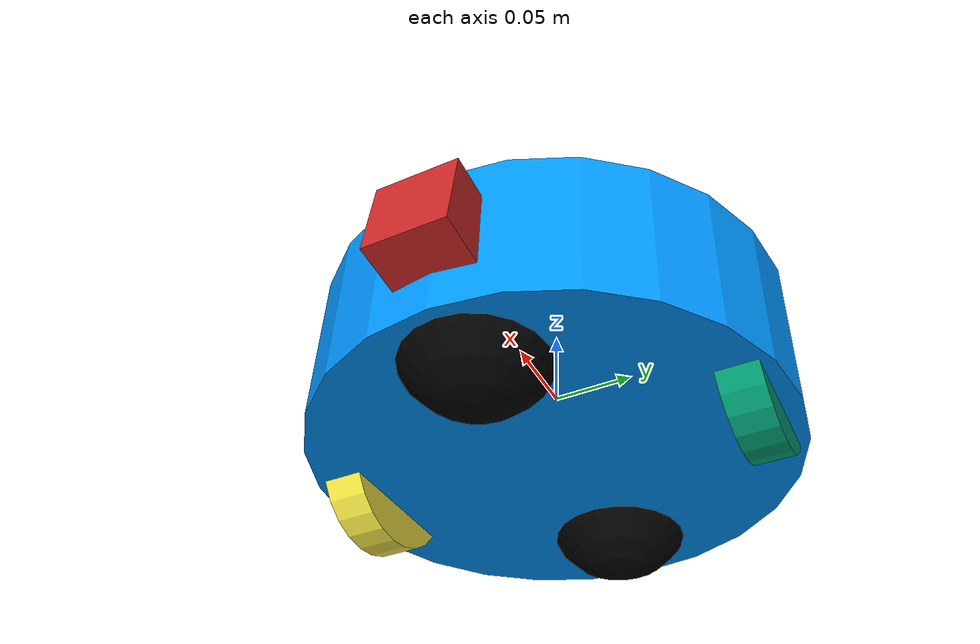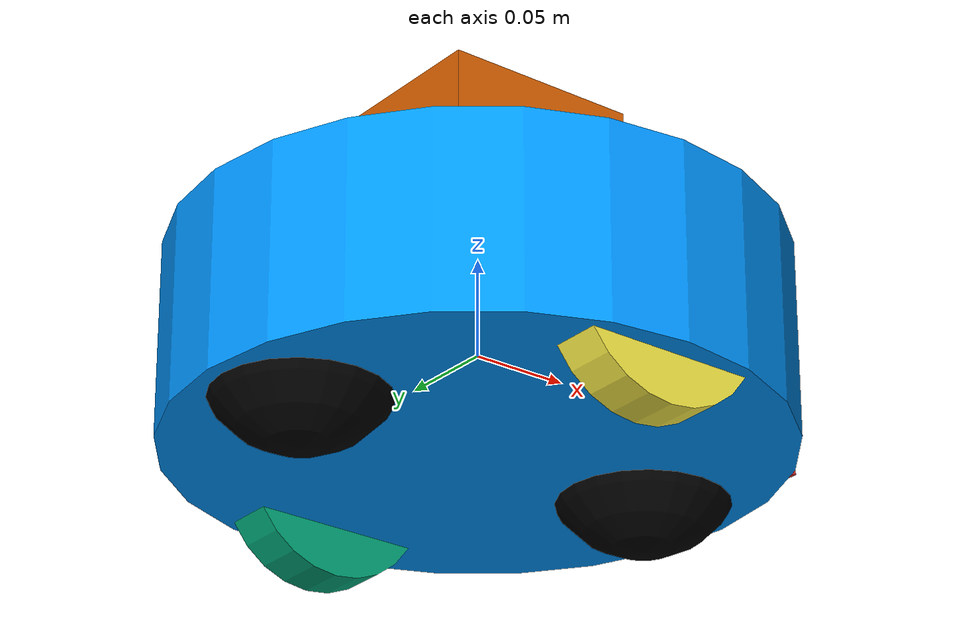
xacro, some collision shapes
<?xml version='1.0'?>

<robot name="my_robot" xmlns:xacro="http://www.ros.org/wiki/xacro">
  <xacro:include filename="$(find my_robot)/urdf/my_robot.gazebo" />
  <link name="robot_footprint"></link>

  <joint name="robot_footprint_joint" type="fixed">
    <origin xyz="0 0 0" rpy="0 0 0" />
    <parent link="robot_footprint"/>
    <child link="chassis" />
  </joint>

  <link name='chassis'>
    <pose>0 0 0.15 0 0 0</pose>

    <inertial>
      <mass value="15.0"/>
      <origin xyz="0.0 0 0" rpy=" 0 0 0"/>
      <inertia
          ixx="0.1" ixy="0" ixz="0"
          iyy="0.1" iyz="0"
          izz="0.1"
      />
    </inertial>

    <collision name='collision'>
      <origin xyz="0 0 0" rpy=" 0 0 0"/>
      <geometry>
        <cylinder radius=".15" length=".1"/>
      </geometry>
    </collision>

    <visual name='chassis_visual'>
      <origin xyz="0 0 0" rpy=" 0 0 0"/>
      <geometry>
        <cylinder radius=".15" length=".1"/>
      </geometry>
      <material name="Blue">
        <color rgba="0 0.588 1.0 1.0"/>
      </material>
    </visual>

    <collision name='front_caster_collision'>
      <origin xyz="0.1 0 -0.025" rpy=" 0 0 0"/>
      <geometry>
        <sphere radius="0.0499"/>
      </geometry>
    </collision>

    <visual name='front_caster_visual'>
      <origin xyz="0.1 0 -0.025" rpy=" 0 0 0"/>
      <geometry>
        <sphere radius="0.05"/>
      </geometry>
      <material name="Black">
        <color rgba="0 0.0 0.0 0.0"/>
      </material>
   </visual>

    <collision name='rear_caster_collision'>
      <origin xyz="-0.1 0 -0.025" rpy=" 0 0 0"/>
      <geometry>
        <sphere radius="0.0499"/>
      </geometry>
    </collision>

    <visual name='rear_caster_visual'>
      <origin xyz="-0.1 0 -0.025" rpy=" 0 0 0"/>
      <geometry>
        <sphere radius="0.05"/>
      </geometry>
      <material name="Black">
        <color rgba="0 0.0 0.0 0.0"/>
      </material>
   </visual>
  </link>
<gazebo reference="chassis">
    <material>Gazebo/Gray</material>
</gazebo>

  <link name='left_wheel'>
    <pose>0 0 0 0 0 0</pose>

    <inertial>
      <mass value="5.0"/>
      <origin xyz="0.0 0 0" rpy=" 0 1.57 1.57"/>
      <inertia
          ixx="0.1" ixy="0" ixz="0"
          iyy="0.1" iyz="0"
          izz="0.1"
      />
    </inertial>

    <collision name='left_wheel_collision'>
      <origin xyz="0 0 0" rpy=" 0 1.57 1.57"/>
      <geometry>
        <cylinder radius=".05" length="0.025"/>
      </geometry>
    </collision>

    <visual name='left_wheel_visual'>
      <origin xyz="0 0 0" rpy=" 0 1.57 1.57"/>
      <geometry>
        <cylinder radius=".05" length="0.025"/>
      </geometry>
    </visual>

  </link>

  <link name='right_wheel'>
    <pose>0 0 0 0 0 0</pose>

    <inertial>
      <mass value="5.0"/>
      <origin xyz="0.0 0 0" rpy=" 0 1.57 1.57"/>
      <inertia
          ixx="0.1" ixy="0" ixz="0"
          iyy="0.1" iyz="0"
          izz="0.1"
      />
    </inertial>

    <collision name='right_wheel_collision'>
      <origin xyz="0 0 0" rpy=" 0 1.57 1.57"/>
      <geometry>
        <cylinder radius=".05" length="0.025"/>
      </geometry>
    </collision>

    <visual name='right_wheel_visual'>
      <origin xyz="0 0 0" rpy=" 0 1.57 1.57"/>
      <geometry>
        <cylinder radius=".05" length="0.025"/>
      </geometry>
    </visual>

  </link>

 <joint type="continuous" name="left_wheel_hinge">
    <origin xyz="0 0.125 -0.025" rpy="0 0 0"/>
    <child link="left_wheel"/>
    <parent link="chassis"/>
    <axis xyz="0 1 0" rpy="0 0 0"/>
    <limit effort="10000" velocity="1000"/>
    <dynamics damping="1.0" friction="1.0"/>
  </joint>

 <joint type="continuous" name="right_wheel_hinge">
    <origin xyz="0 -0.125 -0.025" rpy="0 0 0"/>
    <child link="right_wheel"/>
    <parent link="chassis"/>
    <axis xyz="0 1 0" rpy="0 0 0"/>
    <limit effort="10000" velocity="1000"/>
    <dynamics damping="1.0" friction="1.0"/>
  </joint>

  <link name='camera_link'>
    <pose>0 0 0 0 0 0</pose>

    <inertial>
      <mass value="0.1"/>
      <origin xyz="0.05 0.05 0.05" rpy=" 0 0 0"/>
      <inertia
          ixx="1e-6" ixy="0" ixz="0"
          iyy="1e-6" iyz="0"
          izz="1e-6"
      />
    </inertial>

    <collision name='camera_collision'>
      <origin xyz="0 0 0" rpy=" 0 0 0"/>
      <geometry>
        <box size="0.05 0.05 0.05"/>
      </geometry>
    </collision>

    <visual name='camera_visual'>
      <origin xyz="0 0 0" rpy=" 0 0 0"/>
      <geometry>
        <box size="0.05 0.05 0.05"/>
      </geometry>
    </visual>

  </link>

 <joint type="fixed" name="camera_joint">
    <origin xyz="0.15 0 0.0" rpy="0 -0.1 0"/>
    <child link="camera_link"/>
    <parent link="chassis"/>
    <axis xyz="0 1 0" rpy="0 0 0"/>
  </joint>

  <link name='hokuyo'>
    <pose>0 0 0 0 0 0</pose>

    <inertial>
      <mass value="1e-5"/>
      <origin xyz="0.05 0.05 0.05" rpy=" 0 0 0"/>
      <inertia
          ixx="1e-6" ixy="0" ixz="0"
          iyy="1e-6" iyz="0"
          izz="1e-6"
      />
    </inertial>

    <collision name='hokuyo_collision'>
      <origin xyz="0 0 0" rpy=" 0 0 0"/>
      <geometry>
        <box size="0.1 0.1 0.1"/>
      </geometry>
    </collision>

    <visual name='hokuyo_visual'>
      <origin xyz="0 0 0" rpy=" 0 0 0"/>
      <geometry>
        <mesh filename = "package://my_robot/meshes/hokuyo.dae"/>
      </geometry>
    </visual>

  </link>

 <joint type="fixed" name="hokuyo_joint">
    <origin xyz="0 0 0.075" rpy="0 0 0"/>
    <child link="hokuyo"/>
    <parent link="chassis"/>
    <axis xyz="0 1 0" rpy="0 0 0"/>
  </joint>

<gazebo reference="camera_link">
    <material>Gazebo/Red</material>
</gazebo>

  <joint name="camera_optical_joint" type="fixed">
    <origin xyz="0 0 0" rpy="-1.5707 0 -1.5707"/>
    <parent link="camera_link"/>
    <child link="camera_link_optical"/>
  </joint>

  <link name="camera_link_optical">
  </link>
</robot>
